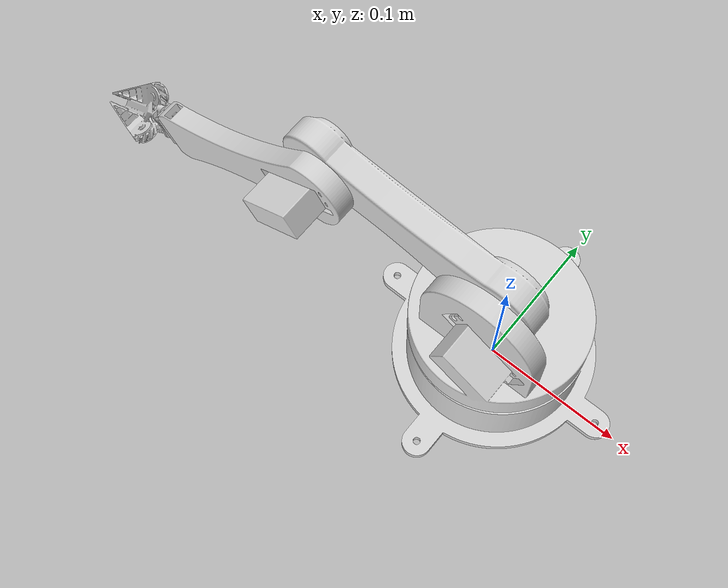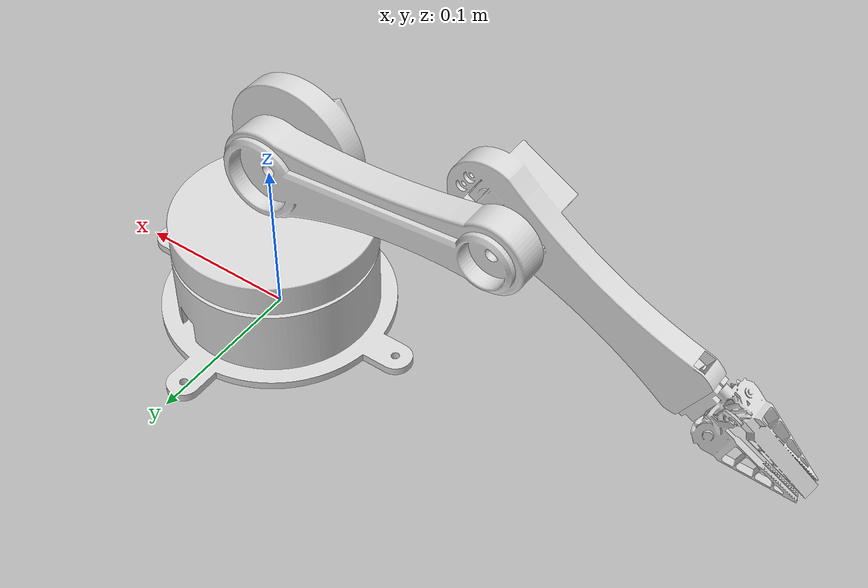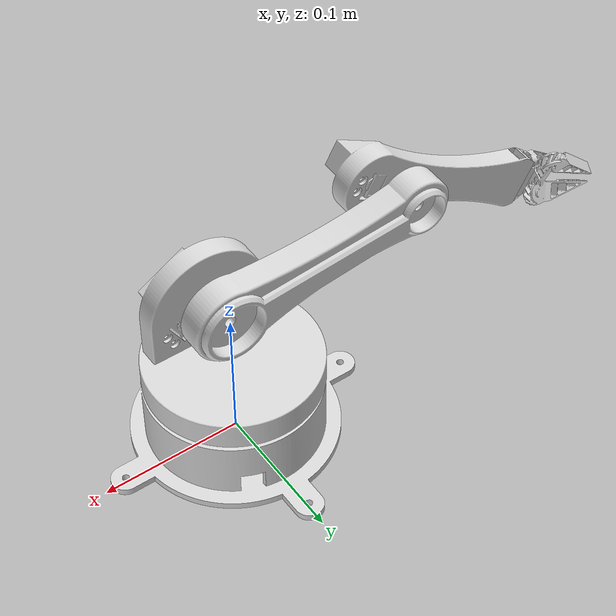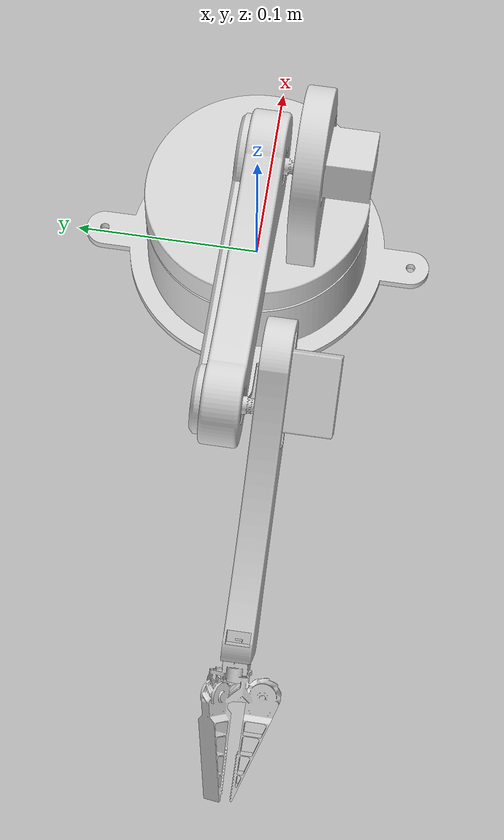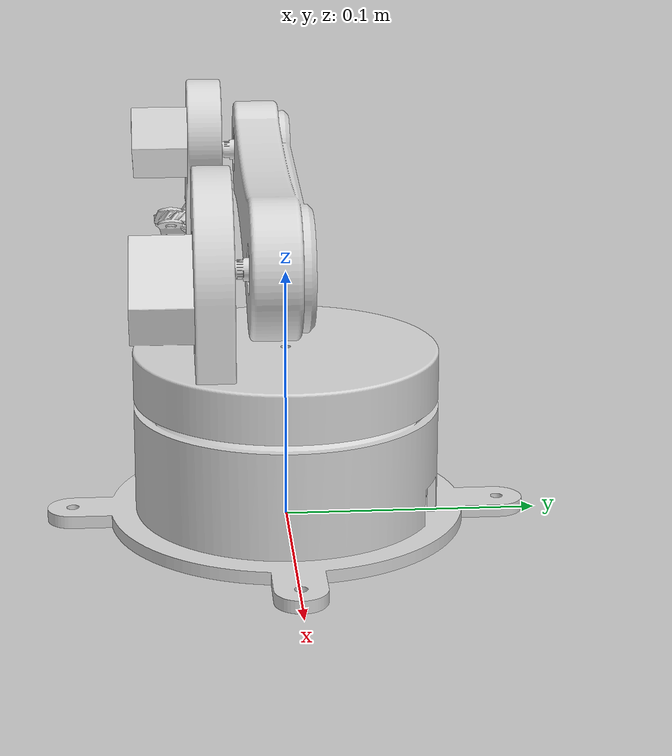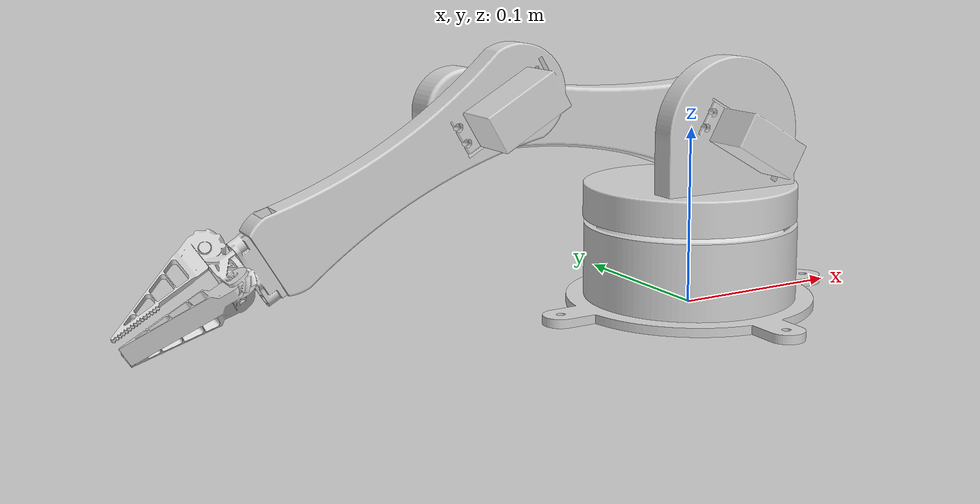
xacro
<?xml version="1.0" ?>
<robot name="problemas2_urdf" xmlns:xacro="http://www.ros.org/wiki/xacro">

<xacro:include filename="$(find problemas2_urdf_description)/urdf/materials.xacro" />
<xacro:include filename="$(find problemas2_urdf_description)/urdf/problemas2_urdf.trans" />
<xacro:include filename="$(find problemas2_urdf_description)/urdf/problemas2_urdf.gazebo" />
<link name="base_link">
  <inertial>
    <origin xyz="-0.0009056459107838102 -0.00018758334619194475 0.01881188501193005" rpy="0 0 0"/>
    <mass value="0.038637316"/>
    <inertia ixx="5.0159236e-05" iyy="6.2261146e-05" izz="9.2038217e-05" ixy="1.5923567e-07" iyz="-0.0" ixz="3.1847134e-07"/>
  </inertial>
  <visual>
    <origin xyz="0 0 0" rpy="0 0 0"/>
    <geometry>
      <mesh filename="file://$(find problemas2_urdf_description)/meshes/base_link.stl" scale="0.001 0.001 0.001"/>
    </geometry>
    <material name="pla"/>
  </visual>
  <collision>
    <origin xyz="0 0 0" rpy="0 0 0"/>
    <geometry>
      <mesh filename="file://$(find problemas2_urdf_description)/meshes/base_link.stl" scale="0.001 0.001 0.001"/>
    </geometry>
  </collision>
</link>

<link name="link1_1">
  <inertial>
    <origin xyz="0.0013613415123529182 -0.011296433911538471 0.01796494077650182" rpy="0 0 0"/>
    <mass value="0.048076033"/>
    <inertia ixx="6.5605096e-05" iyy="6.0350318e-05" izz="7.8980892e-05" ixy="1.7515924e-06" iyz="1.3535032e-05" ixz="-1.5923567e-06"/>
  </inertial>
  <visual>
    <origin xyz="0.0005 -0.0 -0.0577" rpy="0 0 0"/>
    <geometry>
      <mesh filename="file://$(find problemas2_urdf_description)/meshes/link1_1.stl" scale="0.001 0.001 0.001"/>
    </geometry>
    <material name="pla"/>
  </visual>
  <collision>
    <origin xyz="0.0005 -0.0 -0.0577" rpy="0 0 0"/>
    <geometry>
      <mesh filename="file://$(find problemas2_urdf_description)/meshes/link1_1.stl" scale="0.001 0.001 0.001"/>
    </geometry>
  </collision>
</link>

<link name="link2_1">
  <inertial>
    <origin xyz="-0.0651365435078607 0.00830389273842163 0.008736149474852364" rpy="0 0 0"/>
    <mass value="0.18898083"/>
    <inertia ixx="4.2993631e-05" iyy="0.0006138535" izz="0.0005866242" ixy="1.7515924e-06" iyz="-3.1847134e-07" ixz="6.8789809e-05"/>
  </inertial>
  <visual>
    <origin xyz="-0.000124 0.012 -0.101435" rpy="0 0 0"/>
    <geometry>
      <mesh filename="file://$(find problemas2_urdf_description)/meshes/link2_1.stl" scale="0.001 0.001 0.001"/>
    </geometry>
    <material name="pla"/>
  </visual>
  <collision>
    <origin xyz="-0.000124 0.012 -0.101435" rpy="0 0 0"/>
    <geometry>
      <mesh filename="file://$(find problemas2_urdf_description)/meshes/link2_1.stl" scale="0.001 0.001 0.001"/>
    </geometry>
  </collision>
</link>

<link name="link3_1">
  <inertial>
    <origin xyz="-0.021381439360722065 -0.020291222799632965 -0.010770676013148905" rpy="0 0 0"/>
    <mass value="0.12601434"/>
    <inertia ixx="8.089172e-05" iyy="0.00028073248" izz="0.00022229299" ixy="1.4649682e-05" iyz="7.6433121e-06" ixz="-0.00010621019"/>
  </inertial>
  <visual>
    <origin xyz="0.146377 0.012 -0.119783" rpy="0 0 0"/>
    <geometry>
      <mesh filename="file://$(find problemas2_urdf_description)/meshes/link3_1.stl" scale="0.001 0.001 0.001"/>
    </geometry>
    <material name="pla"/>
  </visual>
  <collision>
    <origin xyz="0.146377 0.012 -0.119783" rpy="0 0 0"/>
    <geometry>
      <mesh filename="file://$(find problemas2_urdf_description)/meshes/link3_1.stl" scale="0.001 0.001 0.001"/>
    </geometry>
  </collision>
</link>

<link name="gripper_1">
  <inertial>
    <origin xyz="-0.30165175452708043 -0.06306083804158247 -0.06053344048064653" rpy="0 0 0"/>
    <mass value="0.021372833"/>
    <inertia ixx="3.8216561e-06" iyy="9.7133758e-06" izz="8.2802548e-06" ixy="0.0" iyz="0.0" ixz="-2.2292994e-06"/>
  </inertial>
  <visual>
    <origin xyz="-0.031219 -0.034603 -0.117766" rpy="0 0 0"/>
    <geometry>
      <mesh filename="file://$(find problemas2_urdf_description)/meshes/gripper_1.stl" scale="0.001 0.001 0.001"/>
    </geometry>
    <material name="pla"/>
  </visual>
  <collision>
    <origin xyz="-0.031219 -0.034603 -0.117766" rpy="0 0 0"/>
    <geometry>
      <mesh filename="file://$(find problemas2_urdf_description)/meshes/gripper_1.stl" scale="0.001 0.001 0.001"/>
    </geometry>
  </collision>
</link>

<joint name="revbase" type="continuous">
  <origin xyz="-0.0005 0.0 0.0577" rpy="0 0 0"/>
  <parent link="base_link"/>
  <child link="link1_1"/>
  <axis xyz="0.0 -0.0 1.0"/>
</joint>

<joint name="revlink1" type="revolute">
  <origin xyz="0.000624 -0.012 0.043735" rpy="0 0 0"/>
  <parent link="link1_1"/>
  <child link="link2_1"/>
  <axis xyz="0.0 1.0 0.0"/>
  <limit upper="3.141593" lower="-3.141593" effort="100" velocity="100"/>
</joint>

<joint name="relink2" type="revolute">
  <origin xyz="-0.146501 0.0 0.018348" rpy="0 0 0"/>
  <parent link="link2_1"/>
  <child link="link3_1"/>
  <axis xyz="-0.0 -1.0 -0.0"/>
  <limit upper="3.141593" lower="-3.141593" effort="100" velocity="100"/>
</joint>

<joint name="griprigid" type="fixed">
  <origin xyz="0.177596 0.046603 -0.002017" rpy="0 0 0"/>
  <parent link="link3_1"/>
  <child link="gripper_1"/>
</joint>

<link name="tool0"/>

<joint name="tool0_fixed" type="fixed">
  <origin xyz="-0.354781 -0.063102 -0.082091" rpy="0 0 0"/>
  <parent link="gripper_1"/>
  <child link="tool0"/>
</joint>

</robot>

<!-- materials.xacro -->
<robot name="problemas2_urdf" xmlns:xacro="http://www.ros.org/wiki/xacro" >

<material name="pla">
  <color rgba="0.850 0.850 0.850 1.000"/>
</material>

</robot>

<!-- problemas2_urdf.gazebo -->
<robot name="problemas2_urdf" xmlns:xacro="http://www.ros.org/wiki/xacro" >

<xacro:property name="body_color" value="Gazebo/White" />

<gazebo>
  <plugin name="control" filename="libgazebo_ros_control.so"/>
</gazebo>
<gazebo reference="base_link">
  <material>${body_color}</material>
  <mu1>0.2</mu1>
  <mu2>0.2</mu2>
  <self_collide>true</self_collide>
  <gravity>true</gravity>
</gazebo>

<gazebo reference="link1_1">
  <material>${body_color}</material>
  <mu1>0.2</mu1>
  <mu2>0.2</mu2>
  <self_collide>true</self_collide>
</gazebo>

<gazebo reference="link2_1">
  <material>${body_color}</material>
  <mu1>0.2</mu1>
  <mu2>0.2</mu2>
  <self_collide>true</self_collide>
</gazebo>

<gazebo reference="link3_1">
  <material>${body_color}</material>
  <mu1>0.2</mu1>
  <mu2>0.2</mu2>
  <self_collide>true</self_collide>
</gazebo>

<gazebo reference="gripper_1">
  <material>${body_color}</material>
  <mu1>0.2</mu1>
  <mu2>0.2</mu2>
  <self_collide>true</self_collide>
</gazebo>

</robot>
